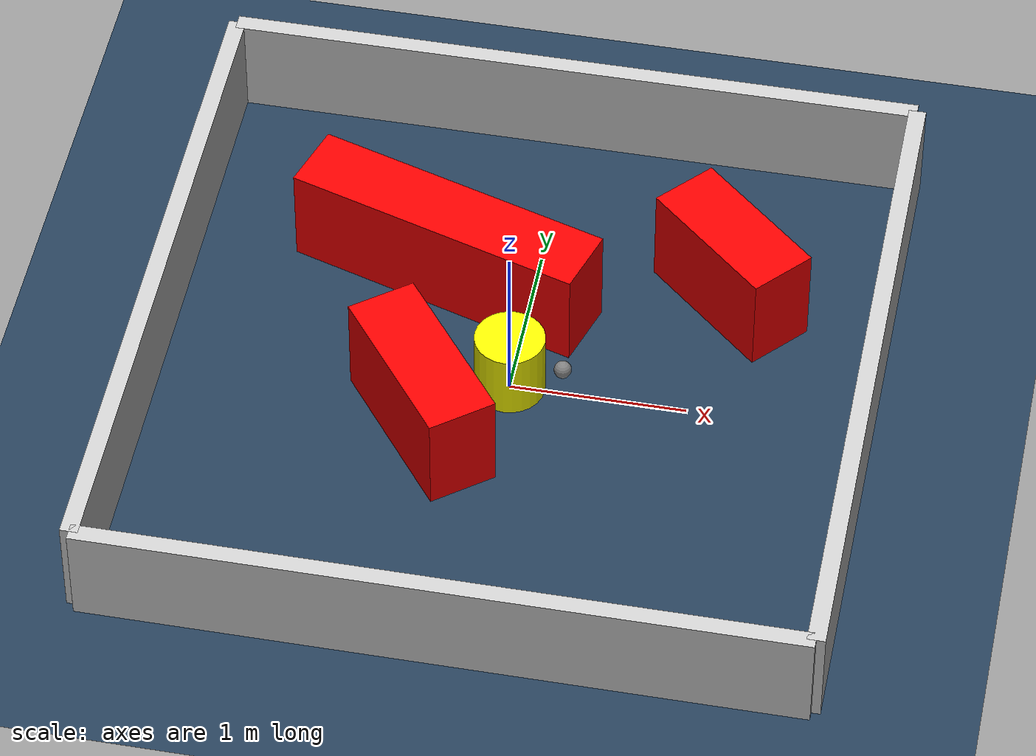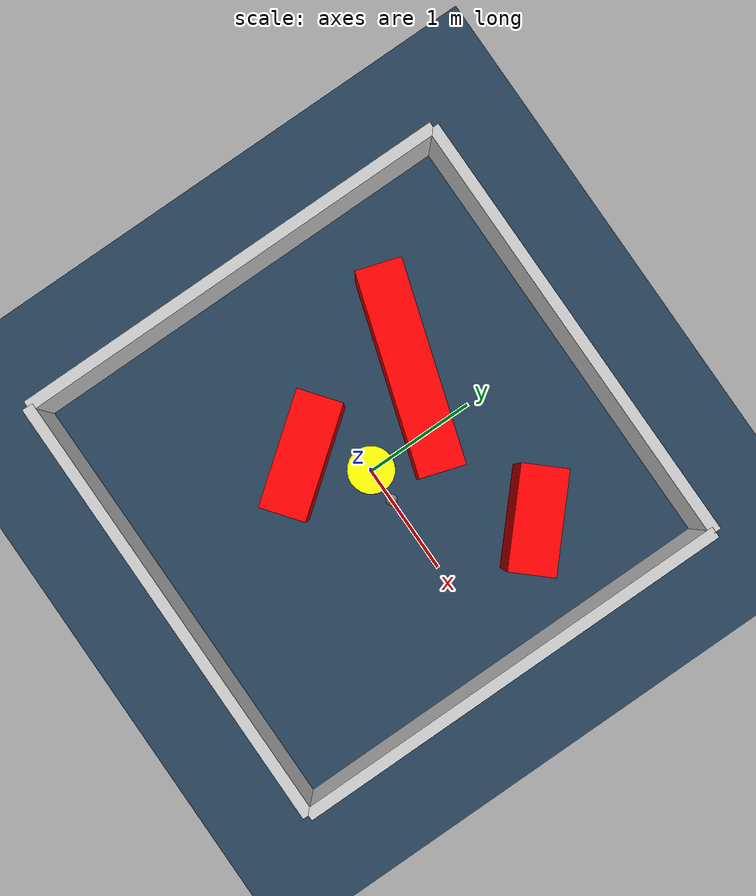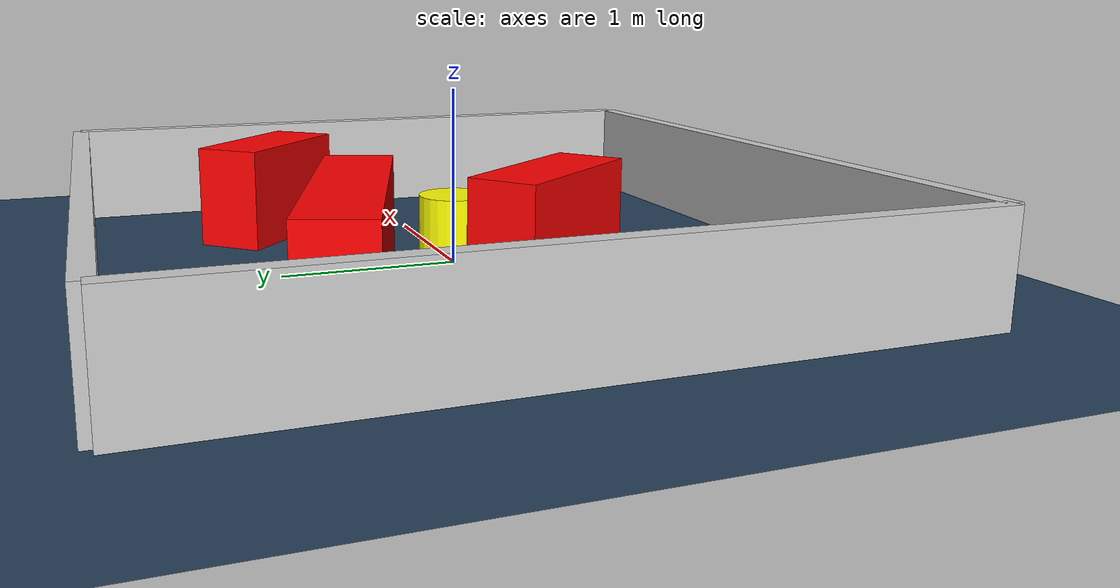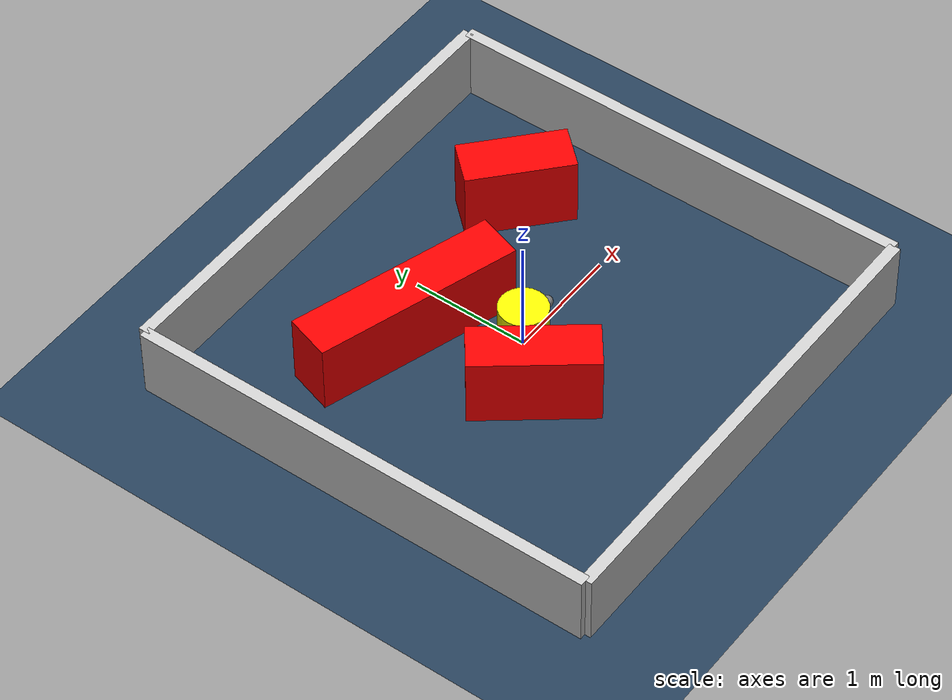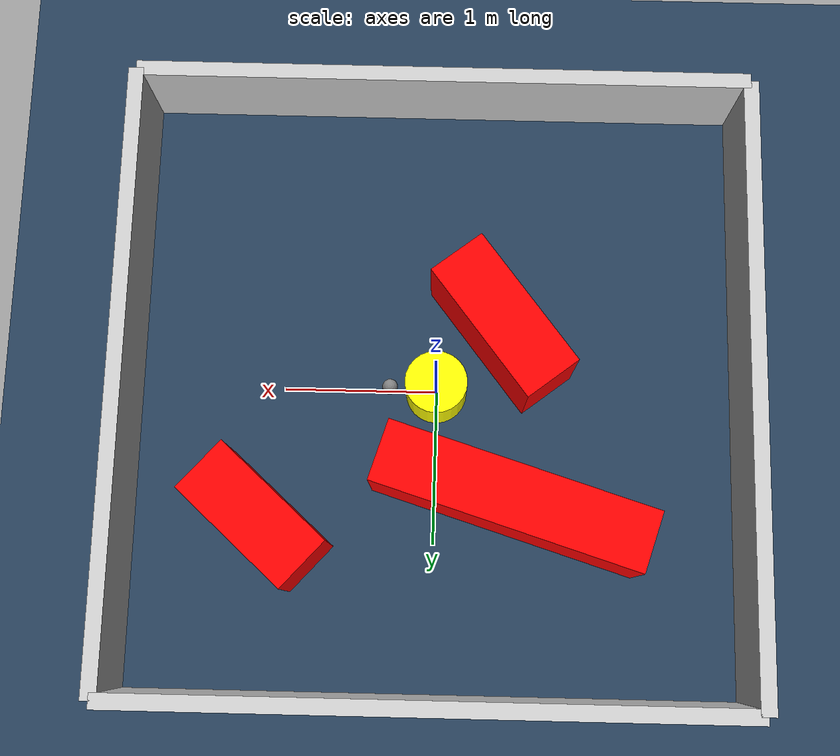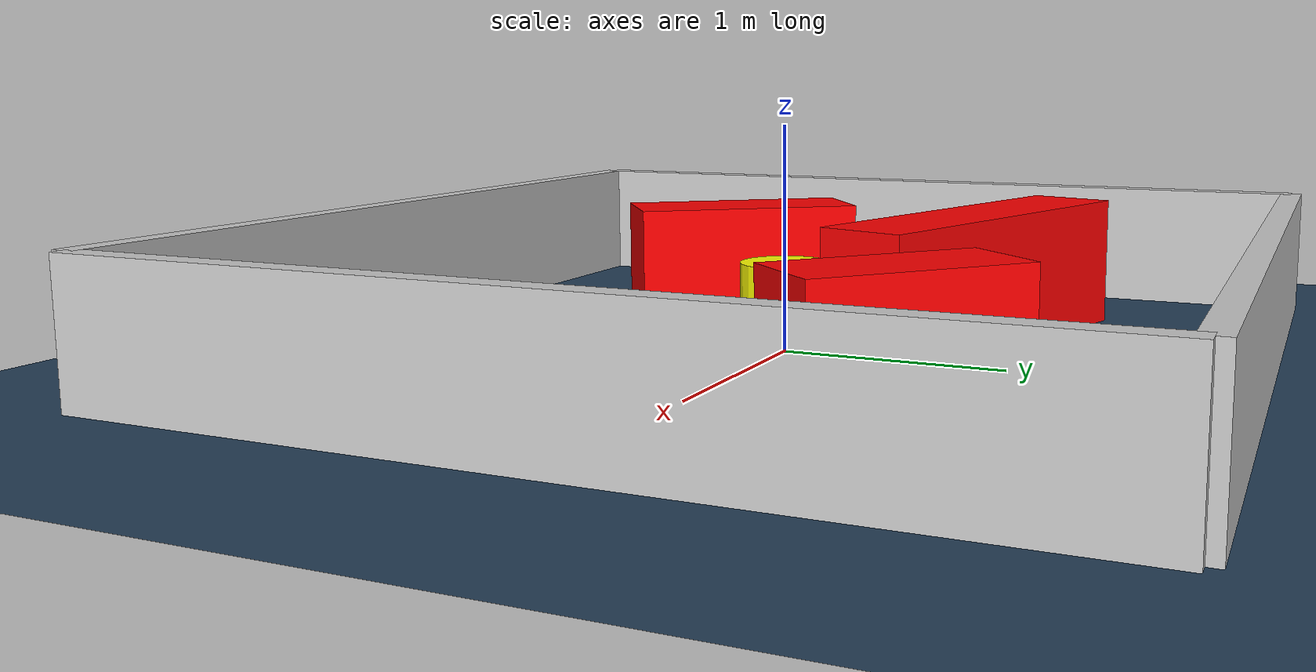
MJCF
<?xml version="1.0" ?>
<mujoco model="generated_environment">
  <option timestep="0.01" integrator="RK4" cone="elliptic"/>
  <default>
    <geom density="1"/>
  </default>
  <asset>
    <texture builtin="gradient" height="3072" rgb1="0.3 0.5 0.7" rgb2="0 0 0" type="skybox" width="512"/>
    <texture builtin="checker" height="300" mark="edge" markrgb="0.8 0.8 0.8" name="groundplane" rgb1="0.2 0.3 0.4" rgb2="0.1 0.2 0.3" type="2d" width="300"/>
    <material name="groundplane" reflectance="0.2" texrepeat="5 5" texture="groundplane" texuniform="true"/>
    <material name="robot" rgba="0.0 1.0 0.0 1"/>
  </asset>
  <worldbody>
    <light dir="0 0 -1" directional="true" pos="0 0 1.5"/>
    <geom condim="4" friction="1.0 0.005 0.001" material="groundplane" name="floor" size="0 0 0.05" type="plane"/>
    <body name="walls">
      <geom name="wall_1" condim="4" pos="-2.0 0.0 0.3" rgba="0.800000011920929 0.800000011920929 0.800000011920929 1.0" size="0.05 2.0 0.3" type="box"/>
      <geom name="wall_2" condim="4" pos="2.0 0.0 0.3" rgba="0.800000011920929 0.800000011920929 0.800000011920929 1.0" size="0.05 2.0 0.3" type="box"/>
      <geom name="wall_3" condim="4" pos="0.0 -2.0 0.3" rgba="0.800000011920929 0.800000011920929 0.800000011920929 1.0" size="2.0 0.05 0.3" type="box"/>
      <geom name="wall_4" condim="4" pos="0.0 2.0 0.3" rgba="0.800000011920929 0.800000011920929 0.800000011920929 1.0" size="2.0 0.05 0.3" type="box"/>
    </body>
    <body name="robot">
      <joint name="joint_x" type="slide" pos="0 0 0" axis="1 0 0"/>
      <joint name="joint_y" type="slide" pos="0 0 0" axis="0 1 0"/>
      <geom name="robot" type="sphere" pos="0.3 0.0 0.2" size="0.05" mass="5." friction="1.0 0.005 0.0001" condim="4" rgba="0.5 0.5 0.5 1.0"/>
      <site name="sensor_ball"/>
    </body>
    <body name="obstacle_movable_1">
      <geom name="obstacle_movable_1" condim="4" pos="0.0 0.0 0.2" euler="0 0 0.0" friction="1.0 0.005 0.001" rgba="1.0 1.0 0.0 1.0" size="0.2 0.2 0.0" type="cylinder" mass="0.1"/>
      <joint type="free"/>
    </body>
    <body name="obstacle_2_static">
      <geom name="obstacle_2_static" condim="4" pos="1.1085535789942385 0.8794975232056321 0.3" euler="0 0 137.92761999452594" friction="1.0 0.005 0.001" rgba="1 0 0 1" size="0.4452258782436965 0.2 0.3" type="box"/>
    </body>
    <body name="obstacle_3_static">
      <geom name="obstacle_3_static" condim="4" pos="-0.41845307704785073 -0.4005393287662926 0.3" euler="0 0 127.59019020375376" friction="1.0 0.005 0.001" rgba="1 0 0 1" size="0.5076417351723633 0.2 0.3" type="box"/>
    </body>
    <body name="obstacle_4_static">
      <geom name="obstacle_4_static" condim="4" pos="-0.49757361023343816 0.7309764456326897 0.3" euler="0 0 342.5594814626391" friction="1.0 0.005 0.001" rgba="1 0 0 1" size="0.8834402718799323 0.2 0.3" type="box"/>
    </body>
  </worldbody>
  <actuator>
    <motor name="actuator_x" joint="joint_x" gear="1" ctrlrange="-1 1"/>
    <motor name="actuator_y" joint="joint_y" gear="1" ctrlrange="-1 1"/>
  </actuator>
</mujoco>
